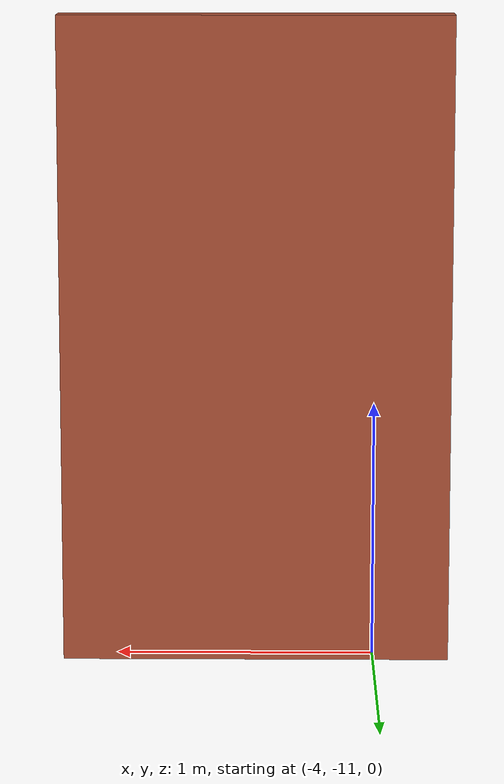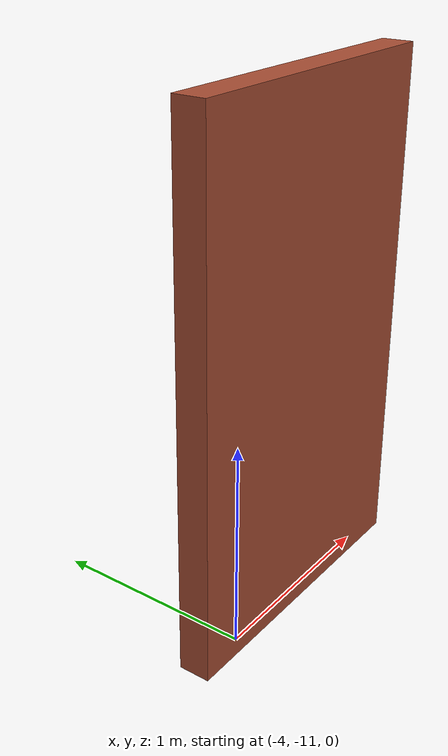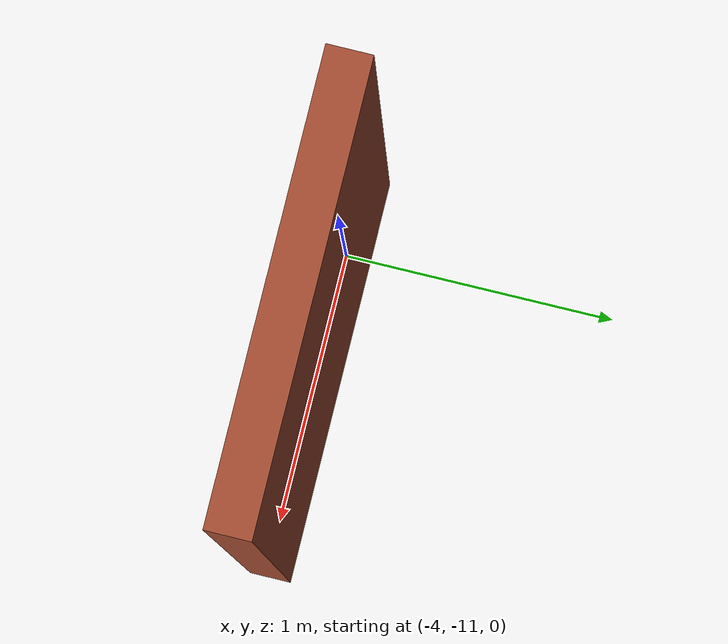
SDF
<?xml version='1.0'?>
<sdf version='1.6'>
  <model name='brick_wall'>
    <pose frame=''>-3.54272 -10.9846 0 0 -0 0</pose>
    <link name='Wall_0'>
      <collision name='Wall_0_Collision'>
        <geometry>
          <box>
            <size>1.5 0.15 2.5</size>
          </box>
        </geometry>
        <pose frame=''>0 0 1.25 0 -0 0</pose>
      </collision>
      <visual name='Wall_0_Visual'>
        <pose frame=''>0 0 1.25 0 -0 0</pose>
        <geometry>
          <box>
            <size>1.5 0.15 2.5</size>
          </box>
        </geometry>
        <material>
          <script>
            <uri>file://media/materials/scripts/gazebo.material</uri>
            <name>Gazebo/Bricks</name>
          </script>
          <ambient>1 1 1 1</ambient>
        </material>
        <meta>
          <layer>0</layer>
        </meta>
      </visual>
      <pose frame=''>0 0 0 0 -0 0</pose>
    </link>
    <static>1</static>
  </model>
</sdf>
